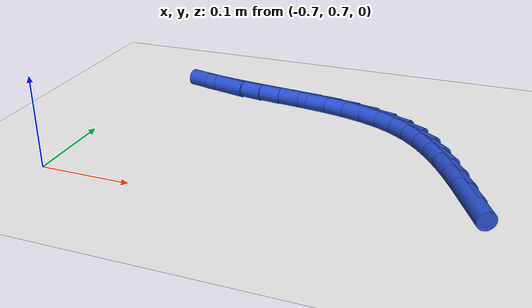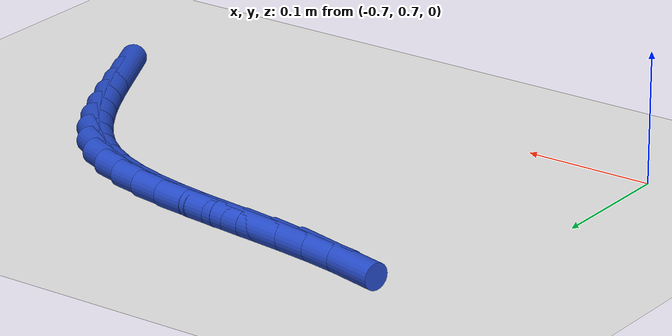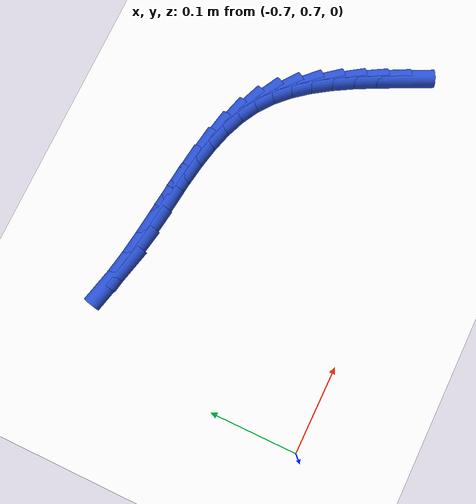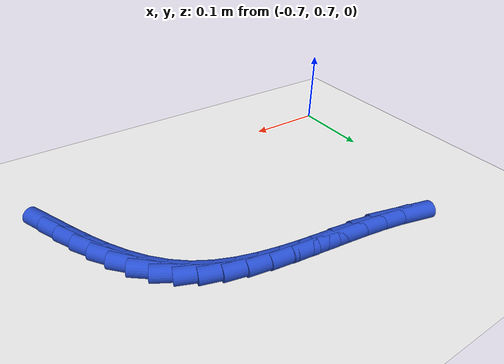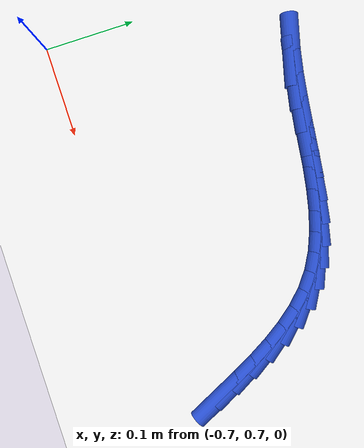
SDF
<sdf version="1.6">
 <world name="default">
  <model name="ground_plane">
   <static>1</static>
   <link name="link">
    <collision name="collision">
     <geometry><plane><normal>0 0 1</normal><size>100 100</size></plane></geometry>
     <surface><friction><ode><mu>100</mu><mu2>50</mu2></ode></friction></surface>
    </collision>
    <visual name="visual">
     <cast_shadows>0</cast_shadows>
     <geometry><plane><normal>0 0 1</normal><size>100 100</size></plane></geometry>
     <material>
      <script><uri>file://media/materials/scripts/gazebo.material</uri><name>Gazebo/WhiteGlow</name></script>
     </material>
    </visual>
   </link>
  </model>
  <model name="line">
   <link name="link_34">
    <pose>-0.27832948961504517 0.7687829056916885 0.01 0 1.57 -1.1195346656095904</pose>
    <collision name="collision">
     <geometry><cylinder><radius>0.01</radius><length>0.08</length></cylinder></geometry>
    </collision>
    <visual name="visual">
     <material>
      <script><name>Gazebo/Blue</name><uri>file://media/materials/scripts/gazebo.material</uri></script>
     </material>
     <geometry><cylinder><radius>0.01</radius><length>0.08</length></cylinder></geometry>
    </visual>
   </link>
   <link name="link_35">
    <pose>-0.2895405564584305 0.791917011121192 0.01 0 1.57 -1.0928588952908276</pose>
    <collision name="collision">
     <geometry><cylinder><radius>0.01</radius><length>0.08</length></cylinder></geometry>
    </collision>
    <visual name="visual">
     <material>
      <script><name>Gazebo/Blue</name><uri>file://media/materials/scripts/gazebo.material</uri></script>
     </material>
     <geometry><cylinder><radius>0.01</radius><length>0.08</length></cylinder></geometry>
    </visual>
   </link>
   <link name="link_36">
    <pose>-0.30117731449635726 0.8143821395693573 0.01 0 1.57 -1.0487222438221038</pose>
    <collision name="collision">
     <geometry><cylinder><radius>0.01</radius><length>0.08</length></cylinder></geometry>
    </collision>
    <visual name="visual">
     <material>
      <script><name>Gazebo/Blue</name><uri>file://media/materials/scripts/gazebo.material</uri></script>
     </material>
     <geometry><cylinder><radius>0.01</radius><length>0.08</length></cylinder></geometry>
    </visual>
   </link>
   <link name="link_37">
    <pose>-0.31349904813034224 0.8357993547230914 0.01 0 1.57 -0.9849063638331867</pose>
    <collision name="collision">
     <geometry><cylinder><radius>0.01</radius><length>0.08</length></cylinder></geometry>
    </collision>
    <visual name="visual">
     <material>
      <script><name>Gazebo/Blue</name><uri>file://media/materials/scripts/gazebo.material</uri></script>
     </material>
     <geometry><cylinder><radius>0.01</radius><length>0.08</length></cylinder></geometry>
    </visual>
   </link>
   <link name="link_38">
    <pose>-0.326765041761902 0.8557897202693008 0.01 0 1.57 -0.8986805505302923</pose>
    <collision name="collision">
     <geometry><cylinder><radius>0.01</radius><length>0.08</length></cylinder></geometry>
    </collision>
    <visual name="visual">
     <material>
      <script><name>Gazebo/Blue</name><uri>file://media/materials/scripts/gazebo.material</uri></script>
     </material>
     <geometry><cylinder><radius>0.01</radius><length>0.08</length></cylinder></geometry>
    </visual>
   </link>
   <link name="link_39">
    <pose>-0.3412345797925537 0.8739742998948934 0.01 0 1.57 -0.7875117167677026</pose>
    <collision name="collision">
     <geometry><cylinder><radius>0.01</radius><length>0.08</length></cylinder></geometry>
    </collision>
    <visual name="visual">
     <material>
      <script><name>Gazebo/Blue</name><uri>file://media/materials/scripts/gazebo.material</uri></script>
     </material>
     <geometry><cylinder><radius>0.01</radius><length>0.08</length></cylinder></geometry>
    </visual>
   </link>
   <link name="link_40">
    <pose>-0.35716694662381376 0.8899741572867759 0.01 0 1.57 -0.6506448861718576</pose>
    <collision name="collision">
     <geometry><cylinder><radius>0.01</radius><length>0.08</length></cylinder></geometry>
    </collision>
    <visual name="visual">
     <material>
      <script><name>Gazebo/Blue</name><uri>file://media/materials/scripts/gazebo.material</uri></script>
     </material>
     <geometry><cylinder><radius>0.01</radius><length>0.08</length></cylinder></geometry>
    </visual>
   </link>
   <link name="link_41">
    <pose>-0.3748202287327567 0.9034122323183431 0.01 0 1.57 -0.5041839313609928</pose>
    <collision name="collision">
     <geometry><cylinder><radius>0.01</radius><length>0.08</length></cylinder></geometry>
    </collision>
    <visual name="visual">
     <material>
      <script><name>Gazebo/Blue</name><uri>file://media/materials/scripts/gazebo.material</uri></script>
     </material>
     <geometry><cylinder><radius>0.01</radius><length>0.08</length></cylinder></geometry>
    </visual>
   </link>
   <link name="link_42">
    <pose>-0.39429536380937463 0.9141575909294289 0.01 0 1.57 -0.37952432522848406</pose>
    <collision name="collision">
     <geometry><cylinder><radius>0.01</radius><length>0.08</length></cylinder></geometry>
    </collision>
    <visual name="visual">
     <material>
      <script><name>Gazebo/Blue</name><uri>file://media/materials/scripts/gazebo.material</uri></script>
     </material>
     <geometry><cylinder><radius>0.01</radius><length>0.08</length></cylinder></geometry>
    </visual>
   </link>
   <link name="link_43">
    <pose>-0.41538129094751364 0.9225679505386968 0.01 0 1.57 -0.2814588411012128</pose>
    <collision name="collision">
     <geometry><cylinder><radius>0.01</radius><length>0.08</length></cylinder></geometry>
    </collision>
    <visual name="visual">
     <material>
      <script><name>Gazebo/Blue</name><uri>file://media/materials/scripts/gazebo.material</uri></script>
     </material>
     <geometry><cylinder><radius>0.01</radius><length>0.08</length></cylinder></geometry>
    </visual>
   </link>
   <link name="link_44">
    <pose>-0.4378301360946045 0.9290586852294832 0.01 0 1.57 -0.20853894303594395</pose>
    <collision name="collision">
     <geometry><cylinder><radius>0.01</radius><length>0.08</length></cylinder></geometry>
    </collision>
    <visual name="visual">
     <material>
      <script><name>Gazebo/Blue</name><uri>file://media/materials/scripts/gazebo.material</uri></script>
     </material>
     <geometry><cylinder><radius>0.01</radius><length>0.08</length></cylinder></geometry>
    </visual>
   </link>
   <link name="link_45">
    <pose>-0.4613940251980771 0.9340451690851242 0.01 0 1.57 -0.1582017605530551</pose>
    <collision name="collision">
     <geometry><cylinder><radius>0.01</radius><length>0.08</length></cylinder></geometry>
    </collision>
    <visual name="visual">
     <material>
      <script><name>Gazebo/Blue</name><uri>file://media/materials/scripts/gazebo.material</uri></script>
     </material>
     <geometry><cylinder><radius>0.01</radius><length>0.08</length></cylinder></geometry>
    </visual>
   </link>
   <link name="link_46">
    <pose>-0.4858250842053616 0.9379427761889566 0.01 0 1.57 -0.12800125727517256</pose>
    <collision name="collision">
     <geometry><cylinder><radius>0.01</radius><length>0.08</length></cylinder></geometry>
    </collision>
    <visual name="visual">
     <material>
      <script><name>Gazebo/Blue</name><uri>file://media/materials/scripts/gazebo.material</uri></script>
     </material>
     <geometry><cylinder><radius>0.01</radius><length>0.08</length></cylinder></geometry>
    </visual>
   </link>
   <link name="link_47">
    <pose>-0.5108754390638885 0.9411668806243169 0.01 0 1.57 -0.11614558169399034</pose>
    <collision name="collision">
     <geometry><cylinder><radius>0.01</radius><length>0.08</length></cylinder></geometry>
    </collision>
    <visual name="visual">
     <material>
      <script><name>Gazebo/Blue</name><uri>file://media/materials/scripts/gazebo.material</uri></script>
     </material>
     <geometry><cylinder><radius>0.01</radius><length>0.08</length></cylinder></geometry>
    </visual>
   </link>
   <link name="link_48">
    <pose>-0.5362972157210881 0.9441328564745414 0.01 0 1.57 -0.12165817281398095</pose>
    <collision name="collision">
     <geometry><cylinder><radius>0.01</radius><length>0.08</length></cylinder></geometry>
    </collision>
    <visual name="visual">
     <material>
      <script><name>Gazebo/Blue</name><uri>file://media/materials/scripts/gazebo.material</uri></script>
     </material>
     <geometry><cylinder><radius>0.01</radius><length>0.08</length></cylinder></geometry>
    </visual>
   </link>
   <link name="link_49">
    <pose>-0.5618425401243904 0.9472560778229667 0.01 0 1.57 -0.14437382453169778</pose>
    <collision name="collision">
     <geometry><cylinder><radius>0.01</radius><length>0.08</length></cylinder></geometry>
    </collision>
    <visual name="visual">
     <material>
      <script><name>Gazebo/Blue</name><uri>file://media/materials/scripts/gazebo.material</uri></script>
     </material>
     <geometry><cylinder><radius>0.01</radius><length>0.08</length></cylinder></geometry>
    </visual>
   </link>
   <link name="link_50">
    <pose>-0.5872635382212257 0.9509519187529292 0.01 0 1.57 -0.18485367870743535</pose>
    <collision name="collision">
     <geometry><cylinder><radius>0.01</radius><length>0.08</length></cylinder></geometry>
    </collision>
    <visual name="visual">
     <material>
      <script><name>Gazebo/Blue</name><uri>file://media/materials/scripts/gazebo.material</uri></script>
     </material>
     <geometry><cylinder><radius>0.01</radius><length>0.08</length></cylinder></geometry>
    </visual>
   </link>
   <link name="link_51">
    <pose>-0.6123123359590241 0.9556357533477657 0.01 0 1.57 -0.24248156528016612</pose>
    <collision name="collision">
     <geometry><cylinder><radius>0.01</radius><length>0.08</length></cylinder></geometry>
    </collision>
    <visual name="visual">
     <material>
      <script><name>Gazebo/Blue</name><uri>file://media/materials/scripts/gazebo.material</uri></script>
     </material>
     <geometry><cylinder><radius>0.01</radius><length>0.08</length></cylinder></geometry>
    </visual>
   </link>
  </model>
 </world>
</sdf>
